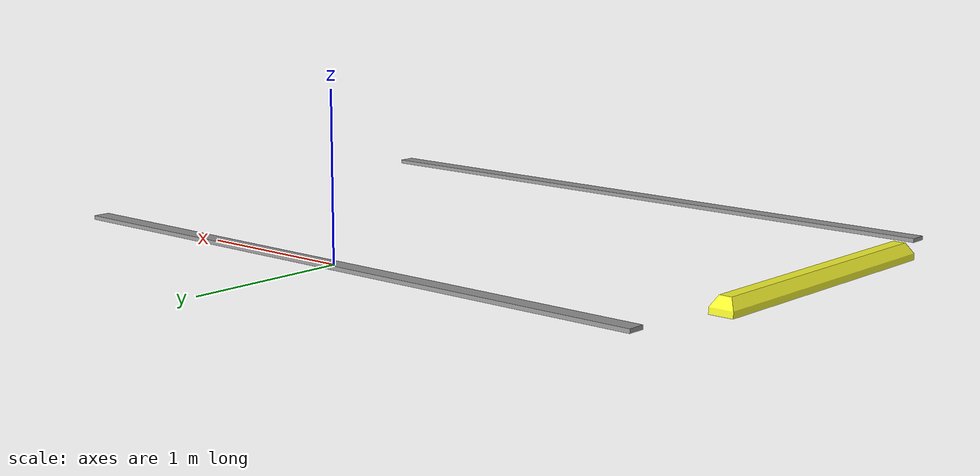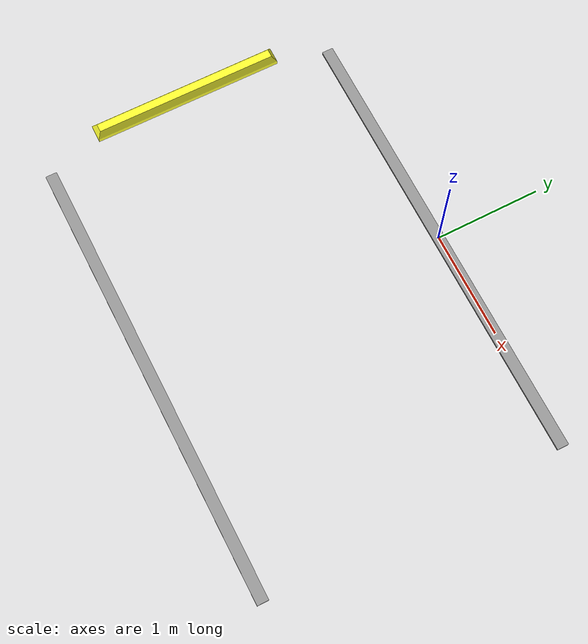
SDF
<?xml version='1.0'?>
<sdf version='1.6'>
  <model name='parking_spot'>
    <link name='link_0'>
      <inertial>
        <mass>0.0111768</mass>
        <inertia>
          <ixx>1.12e-05</ixx>
          <ixy>0</ixy>
          <ixz>0</ixz>
          <iyy>0.0169491</iyy>
          <iyz>0</iyz>
          <izz>0.0169592</izz>
        </inertia>
        <pose frame=''>0 0 0 0 -0 0</pose>
      </inertial>
      <pose frame=''>0 0 0 0 -0 0</pose>
      <gravity>1</gravity>
      <self_collide>0</self_collide>
      <kinematic>0</kinematic>
      <enable_wind>0</enable_wind>
      <visual name='visual'>
        <pose frame=''>0 0 0 0 -0 0</pose>
        <geometry>
          <box>
            <size>4.26577 0.106866 0.024559</size>
          </box>
        </geometry>
        <material>
          <lighting>1</lighting>
          <script>
            <uri>file://media/materials/scripts/gazebo.material</uri>
            <name>Gazebo/Grey</name>
          </script>
          <shader type='vertex'>
            <normal_map>__default__</normal_map>
          </shader>
          <ambient>1 1 1 1</ambient>
          <diffuse>1 1 1 1</diffuse>
          <specular>0 0 0 1</specular>
          <emissive>0 0 0 1</emissive>
        </material>
        <transparency>0</transparency>
        <cast_shadows>1</cast_shadows>
      </visual>
      <collision name='collision'>
        <laser_retro>0</laser_retro>
        <max_contacts>10</max_contacts>
        <pose frame=''>0 0 0 0 -0 0</pose>
        <geometry>
          <box>
            <size>4.26577 0.106866 0.024559</size>
          </box>
        </geometry>
        <surface>
          <friction>
            <ode>
              <mu>1</mu>
              <mu2>1</mu2>
              <fdir1>0 0 0</fdir1>
              <slip1>0</slip1>
              <slip2>0</slip2>
            </ode>
            <torsional>
              <coefficient>1</coefficient>
              <patch_radius>0</patch_radius>
              <surface_radius>0</surface_radius>
              <use_patch_radius>1</use_patch_radius>
              <ode>
                <slip>0</slip>
              </ode>
            </torsional>
          </friction>
          <bounce>
            <restitution_coefficient>0</restitution_coefficient>
            <threshold>1e+06</threshold>
          </bounce>
          <contact>
            <collide_without_contact>0</collide_without_contact>
            <collide_without_contact_bitmask>1</collide_without_contact_bitmask>
            <collide_bitmask>1</collide_bitmask>
            <ode>
              <soft_cfm>0</soft_cfm>
              <soft_erp>0.2</soft_erp>
              <kp>1e+13</kp>
              <kd>1</kd>
              <max_vel>0.01</max_vel>
              <min_depth>0</min_depth>
            </ode>
            <bullet>
              <split_impulse>1</split_impulse>
              <split_impulse_penetration_threshold>-0.01</split_impulse_penetration_threshold>
              <soft_cfm>0</soft_cfm>
              <soft_erp>0.2</soft_erp>
              <kp>1e+13</kp>
              <kd>1</kd>
            </bullet>
          </contact>
        </surface>
      </collision>
    </link>
    <model name='drc_practice_yellow_parking_block'>
      <static>1</static>
      <link name='link'>
        <visual name='visual'>
          <geometry>
            <mesh>
              <uri>model://drc_practice_yellow_parking_block/meshes/block.dae</uri>
            </mesh>
          </geometry>
        </visual>
        <collision name='collision'>
          <geometry>
            <mesh>
              <uri>model://drc_practice_yellow_parking_block/meshes/block.dae</uri>
            </mesh>
          </geometry>
        </collision>
      </link>
      <pose frame=''>-2.30725 -1.37685 0 0 -0 0</pose>
    </model>
    <model name='parking_line'>
      <link name='link_0'>
        <inertial>
          <mass>0.0111768</mass>
          <inertia>
            <ixx>1.12e-05</ixx>
            <ixy>0</ixy>
            <ixz>0</ixz>
            <iyy>0.0169491</iyy>
            <iyz>0</iyz>
            <izz>0.0169592</izz>
          </inertia>
          <pose frame=''>0 0 0 0 -0 0</pose>
        </inertial>
        <pose frame=''>0 -0 0 0 -0 0</pose>
        <gravity>1</gravity>
        <self_collide>0</self_collide>
        <kinematic>0</kinematic>
        <enable_wind>0</enable_wind>
        <visual name='visual'>
          <pose frame=''>0 0 0 0 -0 0</pose>
          <geometry>
            <box>
              <size>4.26577 0.106866 0.024559</size>
            </box>
          </geometry>
          <material>
            <lighting>1</lighting>
            <script>
              <uri>file://media/materials/scripts/gazebo.material</uri>
              <name>Gazebo/Grey</name>
            </script>
            <shader type='vertex'>
              <normal_map>__default__</normal_map>
            </shader>
            <ambient>1 1 1 1</ambient>
            <diffuse>1 1 1 1</diffuse>
            <specular>0 0 0 1</specular>
            <emissive>0 0 0 1</emissive>
          </material>
          <transparency>0</transparency>
          <cast_shadows>1</cast_shadows>
        </visual>
        <collision name='collision'>
          <laser_retro>0</laser_retro>
          <max_contacts>10</max_contacts>
          <pose frame=''>0 0 0 0 -0 0</pose>
          <geometry>
            <box>
              <size>4.26577 0.106866 0.024559</size>
            </box>
          </geometry>
          <surface>
            <friction>
              <ode>
                <mu>1</mu>
                <mu2>1</mu2>
                <fdir1>0 0 0</fdir1>
                <slip1>0</slip1>
                <slip2>0</slip2>
              </ode>
              <torsional>
                <coefficient>1</coefficient>
                <patch_radius>0</patch_radius>
                <surface_radius>0</surface_radius>
                <use_patch_radius>1</use_patch_radius>
                <ode>
                  <slip>0</slip>
                </ode>
              </torsional>
            </friction>
            <bounce>
              <restitution_coefficient>0</restitution_coefficient>
              <threshold>1e+06</threshold>
            </bounce>
            <contact>
              <collide_without_contact>0</collide_without_contact>
              <collide_without_contact_bitmask>1</collide_without_contact_bitmask>
              <collide_bitmask>1</collide_bitmask>
              <ode>
                <soft_cfm>0</soft_cfm>
                <soft_erp>0.2</soft_erp>
                <kp>1e+13</kp>
                <kd>1</kd>
                <max_vel>0.01</max_vel>
                <min_depth>0</min_depth>
              </ode>
              <bullet>
                <split_impulse>1</split_impulse>
                <split_impulse_penetration_threshold>-0.01</split_impulse_penetration_threshold>
                <soft_cfm>0</soft_cfm>
                <soft_erp>0.2</soft_erp>
                <kp>1e+13</kp>
                <kd>1</kd>
              </bullet>
            </contact>
          </surface>
        </collision>
      </link>
      <static>1</static>
      <allow_auto_disable>1</allow_auto_disable>
      <pose frame=''>0.007899 -2.80313 0 0 -0 0</pose>
    </model>
    <joint name='link_JOINT_0' type='fixed'>
      <parent>drc_practice_yellow_parking_block::link</parent>
      <child>link_0</child>
      <pose frame=''>0 0 0 0 -0 0</pose>
      <physics>
        <ode>
          <limit>
            <cfm>0</cfm>
            <erp>0.2</erp>
          </limit>
          <suspension>
            <cfm>0</cfm>
            <erp>0.2</erp>
          </suspension>
        </ode>
      </physics>
    </joint>
    <joint name='link_JOINT_1' type='fixed'>
      <parent>drc_practice_yellow_parking_block::link</parent>
      <child>parking_line::link_0</child>
      <pose frame=''>0 0 0 0 -0 0</pose>
      <physics>
        <ode>
          <limit>
            <cfm>0</cfm>
            <erp>0.2</erp>
          </limit>
          <suspension>
            <cfm>0</cfm>
            <erp>0.2</erp>
          </suspension>
        </ode>
      </physics>
    </joint>
    <static>1</static>
    <allow_auto_disable>1</allow_auto_disable>
  </model>
</sdf>
